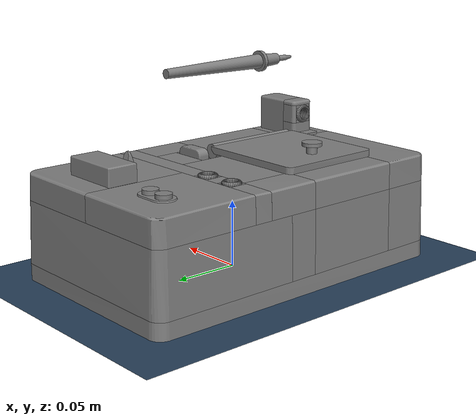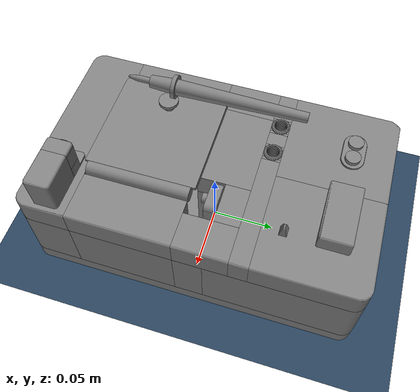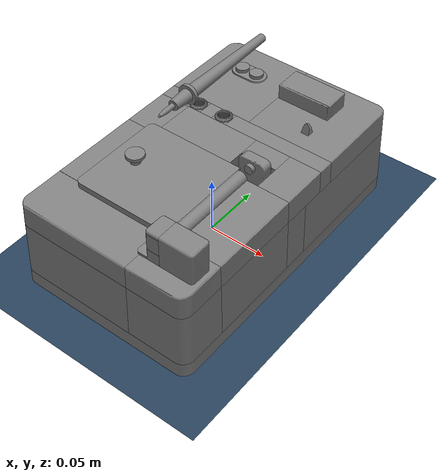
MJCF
<mujoco>
    <option timestep="0.005" integrator="RK4" gravity="0 0 -9.81">
        <flag sensornoise="disable" energy="enable" contact="enable" />
    </option>

    <asset>
        <texture name="grid" type="2d" builtin="checker" width="512" height="512" rgb1=".1 .2 .3"
            rgb2=".2 .3 .4" />
        <material name="grid" texture="grid" texrepeat="1 1" texuniform="true" reflectance=".2" />
    </asset>

    <worldbody>
        <geom name="floor" size="0 0 .05" type="plane" material="grid" />
        <light diffuse=".5 .5 .5" pos="0 0 5" dir="0 0 -1" />
    </worldbody>

    <compiler angle="radian" meshdir="task_board/stl/" autolimits="true" balanceinertia="true"
        discardvisual="true" boundmass="0.001" boundinertia="0.001" />

    <asset>
        <mesh name="task_board_tool_1" file="task_board_tool_1.stl" />
        <mesh name="task_board_tool_2" file="task_board_tool_2.stl" />
        <mesh name="task_board_tool_3" file="task_board_tool_3.stl" />
        <mesh name="task_board_tool_4" file="task_board_tool_4.stl" />
    </asset>

    <worldbody>
        <body name="task_board_tool" pos="0 0 0.15">
            <freejoint />
            <geom type="mesh" mesh="task_board_tool_1" />
            <geom type="mesh" mesh="task_board_tool_2" />
            <geom type="mesh" mesh="task_board_tool_3" />
            <geom type="mesh" mesh="task_board_tool_4" />
            <geom type="sphere" pos="0 -0.056582 0" size="0.00099" />
        </body>
    </worldbody>

    <asset>
        <mesh name="task_board_part_1" file="task_board_part_1.stl" />
        <mesh name="task_board_part_2" file="task_board_part_2.stl" />
        <mesh name="task_board_part_3" file="task_board_part_3.stl" />
        <mesh name="task_board_part_4" file="task_board_part_4.stl" />
        <mesh name="task_board_part_5" file="task_board_part_5.stl" />
        <mesh name="task_board_part_6" file="task_board_part_6.stl" />
        <mesh name="task_board_part_7" file="task_board_part_7.stl" />
        <mesh name="task_board_part_8" file="task_board_part_8.stl" />
        <mesh name="task_board_part_9" file="task_board_part_9.stl" />
        <mesh name="task_board_part_10" file="task_board_part_10.stl" />
        <mesh name="task_board_part_11" file="task_board_part_11.stl" />
        <mesh name="task_board_part_12" file="task_board_part_12.stl" />
        <mesh name="task_board_part_13" file="task_board_part_13.stl" />
        <mesh name="task_board_part_14" file="task_board_part_14.stl" />
        <mesh name="task_board_part_15" file="task_board_part_15.stl" />
        <mesh name="task_board_part_16" file="task_board_part_16.stl" />
        <mesh name="task_board_part_17" file="task_board_part_17.stl" />
        <mesh name="task_board_part_18" file="task_board_part_18.stl" />
        <mesh name="task_board_part_19" file="task_board_part_19.stl" />
        <mesh name="task_board_part_20" file="task_board_part_20.stl" />
        <mesh name="task_board_part_21" file="task_board_part_21.stl" />
        <mesh name="task_board_part_22" file="task_board_part_22.stl" />
        <mesh name="task_board_part_23" file="task_board_part_23.stl" />
        <mesh name="task_board_part_24" file="task_board_part_24.stl" />
        <mesh name="task_board_part_25" file="task_board_part_25.stl" />
        <mesh name="task_board_part_26" file="task_board_part_26.stl" />
        <mesh name="task_board_part_27" file="task_board_part_27.stl" />
        <mesh name="task_board_part_28" file="task_board_part_28.stl" />
        <mesh name="task_board_part_29" file="task_board_part_29.stl" />
        <mesh name="task_board_part_30" file="task_board_part_30.stl" />
        <mesh name="task_board_part_31" file="task_board_part_31.stl" />
        <mesh name="task_board_part_32" file="task_board_part_32.stl" />
        <mesh name="task_board_part_33" file="task_board_part_33.stl" />
        <mesh name="task_board_part_34" file="task_board_part_34.stl" />
        <mesh name="task_board_part_35" file="task_board_part_35.stl" />
        <mesh name="task_board_part_36" file="task_board_part_36.stl" />
        <mesh name="task_board_part_37" file="task_board_part_37.stl" />
        <mesh name="task_board_part_38" file="task_board_part_38.stl" />
        <mesh name="task_board_part_39" file="task_board_part_39.stl" />
        <mesh name="task_board_part_40" file="task_board_part_40.stl" />
        <mesh name="task_board_part_41" file="task_board_part_41.stl" />
        <mesh name="task_board_part_42" file="task_board_part_42.stl" />
        <mesh name="task_board_clock" file="task_board_clock.stl" />
        <mesh name="task_board_hole_side" file="task_board_hole_side.stl" />
        <mesh name="task_board_lid" file="task_board_lid.stl" />
        <mesh name="task_board_lid_hinge" file="task_board_lid_hinge.stl" />
        <mesh name="task_board_slider" file="task_board_slider.stl" />
        <mesh name="task_board_button" file="task_board_button.stl" />
    </asset>
    <worldbody>
        <body name="task_board_main">
            <geom type="mesh" mesh="task_board_part_1" />
            <geom type="mesh" mesh="task_board_part_2" />
            <geom type="mesh" mesh="task_board_part_3" />
            <geom type="mesh" mesh="task_board_part_4" />
            <geom type="mesh" mesh="task_board_part_5" />
            <geom type="mesh" mesh="task_board_part_6" />
            <geom type="mesh" mesh="task_board_part_7" />
            <geom type="mesh" mesh="task_board_part_8" />
            <geom type="mesh" mesh="task_board_part_9" />
            <geom type="mesh" mesh="task_board_part_10" />
            <geom type="mesh" mesh="task_board_part_11" />
            <geom type="mesh" mesh="task_board_part_12" />
            <geom type="mesh" mesh="task_board_part_13" />
            <geom type="mesh" mesh="task_board_part_14" />
            <geom type="mesh" mesh="task_board_part_15" />
            <geom type="mesh" mesh="task_board_part_16" />
            <geom type="mesh" mesh="task_board_part_17" />
            <geom type="mesh" mesh="task_board_part_18" />
            <geom type="mesh" mesh="task_board_part_19" />
            <geom type="mesh" mesh="task_board_part_20" />
            <geom type="mesh" mesh="task_board_part_21" />
            <geom type="mesh" mesh="task_board_part_22" />
            <geom type="mesh" mesh="task_board_part_23" />
            <geom type="mesh" mesh="task_board_part_24" />
            <geom type="mesh" mesh="task_board_part_25" />
            <geom type="mesh" mesh="task_board_part_26" />
            <geom type="mesh" mesh="task_board_part_27" />
            <geom type="mesh" mesh="task_board_part_28" />
            <geom type="mesh" mesh="task_board_part_29" />
            <geom type="mesh" mesh="task_board_part_30" />
            <geom type="mesh" mesh="task_board_part_31" />
            <geom type="mesh" mesh="task_board_part_32" />
            <geom type="mesh" mesh="task_board_part_33" />
            <geom type="mesh" mesh="task_board_part_34" />
            <geom type="mesh" mesh="task_board_part_35" />
            <geom type="mesh" mesh="task_board_part_36" />
            <geom type="mesh" mesh="task_board_part_37" />
            <geom type="mesh" mesh="task_board_part_38" />
            <geom type="mesh" mesh="task_board_part_39" />
            <geom type="mesh" mesh="task_board_part_40" />
            <geom type="mesh" mesh="task_board_part_41" />
            <geom type="mesh" mesh="task_board_part_42" />
            <geom pos="0.02361 0.09598 0.086058" type="mesh" mesh="task_board_clock" />
            <geom pos="-0.0191 0.039 0.0734" type="mesh" mesh="task_board_hole_side" />
            <geom pos="-0.0191 0.039 0.0734" quat="0.995185 0 0 0.0980171" type="mesh"
                mesh="task_board_hole_side" />
            <geom pos="-0.0191 0.039 0.0734" quat="0.980785 0 0 0.19509" type="mesh"
                mesh="task_board_hole_side" />
            <geom pos="-0.0191 0.039 0.0734" quat="0.95694 0 0 0.290285" type="mesh"
                mesh="task_board_hole_side" />
            <geom pos="-0.0191 0.039 0.0734" quat="0.92388 0 0 0.382683" type="mesh"
                mesh="task_board_hole_side" />
            <geom pos="-0.0191 0.039 0.0734" quat="0.881921 0 0 0.471397" type="mesh"
                mesh="task_board_hole_side" />
            <geom pos="-0.0191 0.039 0.0734" quat="0.83147 0 0 0.55557" type="mesh"
                mesh="task_board_hole_side" />
            <geom pos="-0.0191 0.039 0.0734" quat="0.77301 0 0 0.634393" type="mesh"
                mesh="task_board_hole_side" />
            <geom pos="-0.0191 0.039 0.0734" quat="0.707107 0 0 0.707107" type="mesh"
                mesh="task_board_hole_side" />
            <geom pos="-0.0191 0.039 0.0734" quat="0.634393 0 0 0.77301" type="mesh"
                mesh="task_board_hole_side" />
            <geom pos="-0.0191 0.039 0.0734" quat="0.55557 0 0 0.83147" type="mesh"
                mesh="task_board_hole_side" />
            <geom pos="-0.0191 0.039 0.0734" quat="0.471397 0 0 0.881921" type="mesh"
                mesh="task_board_hole_side" />
            <geom pos="-0.0191 0.039 0.0734" quat="0.382683 0 0 0.92388" type="mesh"
                mesh="task_board_hole_side" />
            <geom pos="-0.0191 0.039 0.0734" quat="0.290285 0 0 0.95694" type="mesh"
                mesh="task_board_hole_side" />
            <geom pos="-0.0191 0.039 0.0734" quat="0.19509 0 0 0.980785" type="mesh"
                mesh="task_board_hole_side" />
            <geom pos="-0.0191 0.039 0.0734" quat="0.0980171 0 0 0.995185" type="mesh"
                mesh="task_board_hole_side" />
            <geom pos="-0.0191 0.039 0.0734" quat="0 0 0 1" type="mesh" mesh="task_board_hole_side" />
            <geom pos="-0.0191 0.039 0.0734" quat="-0.0980171 0 0 0.995185" type="mesh"
                mesh="task_board_hole_side" />
            <geom pos="-0.0191 0.039 0.0734" quat="-0.19509 0 0 0.980785" type="mesh"
                mesh="task_board_hole_side" />
            <geom pos="-0.0191 0.039 0.0734" quat="-0.290285 0 0 0.95694" type="mesh"
                mesh="task_board_hole_side" />
            <geom pos="-0.0191 0.039 0.0734" quat="-0.382683 0 0 0.92388" type="mesh"
                mesh="task_board_hole_side" />
            <geom pos="-0.0191 0.039 0.0734" quat="-0.471397 0 0 0.881921" type="mesh"
                mesh="task_board_hole_side" />
            <geom pos="-0.0191 0.039 0.0734" quat="-0.55557 0 0 0.83147" type="mesh"
                mesh="task_board_hole_side" />
            <geom pos="-0.0191 0.039 0.0734" quat="-0.634393 0 0 0.77301" type="mesh"
                mesh="task_board_hole_side" />
            <geom pos="-0.0191 0.039 0.0734" quat="-0.707107 0 0 0.707107" type="mesh"
                mesh="task_board_hole_side" />
            <geom pos="-0.0191 0.039 0.0734" quat="-0.77301 0 0 0.634393" type="mesh"
                mesh="task_board_hole_side" />
            <geom pos="-0.0191 0.039 0.0734" quat="-0.83147 0 0 0.55557" type="mesh"
                mesh="task_board_hole_side" />
            <geom pos="-0.0191 0.039 0.0734" quat="-0.881921 0 0 0.471397" type="mesh"
                mesh="task_board_hole_side" />
            <geom pos="-0.0191 0.039 0.0734" quat="-0.92388 0 0 0.382683" type="mesh"
                mesh="task_board_hole_side" />
            <geom pos="-0.0191 0.039 0.0734" quat="-0.95694 0 0 0.290285" type="mesh"
                mesh="task_board_hole_side" />
            <geom pos="-0.0191 0.039 0.0734" quat="-0.980785 0 0 0.19509" type="mesh"
                mesh="task_board_hole_side" />
            <geom pos="-0.0191 0.039 0.0734" quat="-0.995185 0 0 0.0980171" type="mesh"
                mesh="task_board_hole_side" />
            <geom pos="-0.044 0.039 0.0734" type="mesh" mesh="task_board_hole_side" />
            <geom pos="-0.044 0.039 0.0734" quat="0.995185 0 0 0.0980171" type="mesh"
                mesh="task_board_hole_side" />
            <geom pos="-0.044 0.039 0.0734" quat="0.980785 0 0 0.19509" type="mesh"
                mesh="task_board_hole_side" />
            <geom pos="-0.044 0.039 0.0734" quat="0.95694 0 0 0.290285" type="mesh"
                mesh="task_board_hole_side" />
            <geom pos="-0.044 0.039 0.0734" quat="0.92388 0 0 0.382683" type="mesh"
                mesh="task_board_hole_side" />
            <geom pos="-0.044 0.039 0.0734" quat="0.881921 0 0 0.471397" type="mesh"
                mesh="task_board_hole_side" />
            <geom pos="-0.044 0.039 0.0734" quat="0.83147 0 0 0.55557" type="mesh"
                mesh="task_board_hole_side" />
            <geom pos="-0.044 0.039 0.0734" quat="0.77301 0 0 0.634393" type="mesh"
                mesh="task_board_hole_side" />
            <geom pos="-0.044 0.039 0.0734" quat="0.707107 0 0 0.707107" type="mesh"
                mesh="task_board_hole_side" />
            <geom pos="-0.044 0.039 0.0734" quat="0.634393 0 0 0.77301" type="mesh"
                mesh="task_board_hole_side" />
            <geom pos="-0.044 0.039 0.0734" quat="0.55557 0 0 0.83147" type="mesh"
                mesh="task_board_hole_side" />
            <geom pos="-0.044 0.039 0.0734" quat="0.471397 0 0 0.881921" type="mesh"
                mesh="task_board_hole_side" />
            <geom pos="-0.044 0.039 0.0734" quat="0.382683 0 0 0.92388" type="mesh"
                mesh="task_board_hole_side" />
            <geom pos="-0.044 0.039 0.0734" quat="0.290285 0 0 0.95694" type="mesh"
                mesh="task_board_hole_side" />
            <geom pos="-0.044 0.039 0.0734" quat="0.19509 0 0 0.980785" type="mesh"
                mesh="task_board_hole_side" />
            <geom pos="-0.044 0.039 0.0734" quat="0.0980171 0 0 0.995185" type="mesh"
                mesh="task_board_hole_side" />
            <geom pos="-0.044 0.039 0.0734" quat="0 0 0 1" type="mesh" mesh="task_board_hole_side" />
            <geom pos="-0.044 0.039 0.0734" quat="-0.0980171 0 0 0.995185" type="mesh"
                mesh="task_board_hole_side" />
            <geom pos="-0.044 0.039 0.0734" quat="-0.19509 0 0 0.980785" type="mesh"
                mesh="task_board_hole_side" />
            <geom pos="-0.044 0.039 0.0734" quat="-0.290285 0 0 0.95694" type="mesh"
                mesh="task_board_hole_side" />
            <geom pos="-0.044 0.039 0.0734" quat="-0.382683 0 0 0.92388" type="mesh"
                mesh="task_board_hole_side" />
            <geom pos="-0.044 0.039 0.0734" quat="-0.471397 0 0 0.881921" type="mesh"
                mesh="task_board_hole_side" />
            <geom pos="-0.044 0.039 0.0734" quat="-0.55557 0 0 0.83147" type="mesh"
                mesh="task_board_hole_side" />
            <geom pos="-0.044 0.039 0.0734" quat="-0.634393 0 0 0.77301" type="mesh"
                mesh="task_board_hole_side" />
            <geom pos="-0.044 0.039 0.0734" quat="-0.707107 0 0 0.707107" type="mesh"
                mesh="task_board_hole_side" />
            <geom pos="-0.044 0.039 0.0734" quat="-0.77301 0 0 0.634393" type="mesh"
                mesh="task_board_hole_side" />
            <geom pos="-0.044 0.039 0.0734" quat="-0.83147 0 0 0.55557" type="mesh"
                mesh="task_board_hole_side" />
            <geom pos="-0.044 0.039 0.0734" quat="-0.881921 0 0 0.471397" type="mesh"
                mesh="task_board_hole_side" />
            <geom pos="-0.044 0.039 0.0734" quat="-0.92388 0 0 0.382683" type="mesh"
                mesh="task_board_hole_side" />
            <geom pos="-0.044 0.039 0.0734" quat="-0.95694 0 0 0.290285" type="mesh"
                mesh="task_board_hole_side" />
            <geom pos="-0.044 0.039 0.0734" quat="-0.980785 0 0 0.19509" type="mesh"
                mesh="task_board_hole_side" />
            <geom pos="-0.044 0.039 0.0734" quat="-0.995185 0 0 0.0980171" type="mesh"
                mesh="task_board_hole_side" />
            <geom pos="0.037334 -0.102 0.0963" quat="0.707107 0 -0.707107 0" type="mesh"
                mesh="task_board_hole_side" />
            <geom pos="0.037334 -0.102 0.0963" quat="0.703702 -0.0693086 -0.703702 0.0693086"
                type="mesh" mesh="task_board_hole_side" />
            <geom pos="0.037334 -0.102 0.0963" quat="0.69352 -0.13795 -0.69352 0.13795" type="mesh"
                mesh="task_board_hole_side" />
            <geom pos="0.037334 -0.102 0.0963" quat="0.676659 -0.205262 -0.676659 0.205262"
                type="mesh" mesh="task_board_hole_side" />
            <geom pos="0.037334 -0.102 0.0963" quat="0.653281 -0.270598 -0.653281 0.270598"
                type="mesh" mesh="task_board_hole_side" />
            <geom pos="0.037334 -0.102 0.0963" quat="0.623613 -0.333328 -0.623613 0.333328"
                type="mesh" mesh="task_board_hole_side" />
            <geom pos="0.037334 -0.102 0.0963" quat="0.587938 -0.392847 -0.587938 0.392847"
                type="mesh" mesh="task_board_hole_side" />
            <geom pos="0.037334 -0.102 0.0963" quat="0.546601 -0.448584 -0.546601 0.448584"
                type="mesh" mesh="task_board_hole_side" />
            <geom pos="0.037334 -0.102 0.0963" quat="0.5 -0.5 -0.5 0.5" type="mesh"
                mesh="task_board_hole_side" />
            <geom pos="0.037334 -0.102 0.0963" quat="0.448584 -0.546601 -0.448584 0.546601"
                type="mesh" mesh="task_board_hole_side" />
            <geom pos="0.037334 -0.102 0.0963" quat="0.392847 -0.587938 -0.392847 0.587938"
                type="mesh" mesh="task_board_hole_side" />
            <geom pos="0.037334 -0.102 0.0963" quat="0.333328 -0.623613 -0.333328 0.623613"
                type="mesh" mesh="task_board_hole_side" />
            <geom pos="0.037334 -0.102 0.0963" quat="0.270598 -0.653281 -0.270598 0.653281"
                type="mesh" mesh="task_board_hole_side" />
            <geom pos="0.037334 -0.102 0.0963" quat="0.205262 -0.676659 -0.205262 0.676659"
                type="mesh" mesh="task_board_hole_side" />
            <geom pos="0.037334 -0.102 0.0963" quat="0.13795 -0.69352 -0.13795 0.69352" type="mesh"
                mesh="task_board_hole_side" />
            <geom pos="0.037334 -0.102 0.0963" quat="0.0693086 -0.703702 -0.0693086 0.703702"
                type="mesh" mesh="task_board_hole_side" />
            <geom pos="0.037334 -0.102 0.0963" quat="0 -0.707107 0 0.707107" type="mesh"
                mesh="task_board_hole_side" />
            <geom pos="0.037334 -0.102 0.0963" quat="-0.0693086 -0.703702 0.0693086 0.703702"
                type="mesh" mesh="task_board_hole_side" />
            <geom pos="0.037334 -0.102 0.0963" quat="-0.13795 -0.69352 0.13795 0.69352" type="mesh"
                mesh="task_board_hole_side" />
            <geom pos="0.037334 -0.102 0.0963" quat="-0.205262 -0.676659 0.205262 0.676659"
                type="mesh" mesh="task_board_hole_side" />
            <geom pos="0.037334 -0.102 0.0963" quat="-0.270598 -0.653281 0.270598 0.653281"
                type="mesh" mesh="task_board_hole_side" />
            <geom pos="0.037334 -0.102 0.0963" quat="-0.333328 -0.623613 0.333328 0.623613"
                type="mesh" mesh="task_board_hole_side" />
            <geom pos="0.037334 -0.102 0.0963" quat="-0.392847 -0.587938 0.392847 0.587938"
                type="mesh" mesh="task_board_hole_side" />
            <geom pos="0.037334 -0.102 0.0963" quat="-0.448584 -0.546601 0.448584 0.546601"
                type="mesh" mesh="task_board_hole_side" />
            <geom pos="0.037334 -0.102 0.0963" quat="-0.5 -0.5 0.5 0.5" type="mesh"
                mesh="task_board_hole_side" />
            <geom pos="0.037334 -0.102 0.0963" quat="-0.546601 -0.448584 0.546601 0.448584"
                type="mesh" mesh="task_board_hole_side" />
            <geom pos="0.037334 -0.102 0.0963" quat="-0.587938 -0.392847 0.587938 0.392847"
                type="mesh" mesh="task_board_hole_side" />
            <geom pos="0.037334 -0.102 0.0963" quat="-0.623613 -0.333328 0.623613 0.333328"
                type="mesh" mesh="task_board_hole_side" />
            <geom pos="0.037334 -0.102 0.0963" quat="-0.653281 -0.270598 0.653281 0.270598"
                type="mesh" mesh="task_board_hole_side" />
            <geom pos="0.037334 -0.102 0.0963" quat="-0.676659 -0.205262 0.676659 0.205262"
                type="mesh" mesh="task_board_hole_side" />
            <geom pos="0.037334 -0.102 0.0963" quat="-0.69352 -0.13795 0.69352 0.13795" type="mesh"
                mesh="task_board_hole_side" />
            <geom pos="0.037334 -0.102 0.0963" quat="-0.703702 -0.0693086 0.703702 0.0693086"
                type="mesh" mesh="task_board_hole_side" />
            <body name="task_board_lid" pos="0.033026 -0.0472 0.079405" gravcomp="0">
                <joint name="task_board_lid_joint" pos="0 0 0" axis="0 1 0" range="0 2.07293" />
                <geom type="mesh" mesh="task_board_lid" />
                <geom type="mesh" mesh="task_board_lid_hinge" />
                <geom size="0.004 0.003" pos="-0.066776 0 0.008037" type="cylinder" />
                <geom size="0.007486 0.00135" pos="-0.066776 0 0.012137" type="cylinder" />
            </body>
            <body name="task_board_slider" pos="0.04301 0.061594 0.082959" gravcomp="0">
                <joint name="task_board_slider_joint" pos="0 0 0" axis="1 0 0" type="slide"
                    range="-0.025 0.01" damping="0.1" solimplimit=".99 .99 0" />
                <geom type="mesh" mesh="task_board_slider" />
            </body>
            <body name="task_board_button_1" pos="-0.043957 0.09625 0.0835" gravcomp="1">
                <joint name="task_board_button_1_joint" pos="0 0 0" axis="0 0 1" type="slide"
                    range="-0.003 0" springdamper="1 0.3" springref="0.0" />
                <geom type="mesh" mesh="task_board_button" />
            </body>
            <body name="task_board_button_2" pos="-0.02995 0.09625 0.0835" gravcomp="1">
                <joint name="task_board_button_2_joint" pos="0 0 0" axis="0 0 1" type="slide"
                    range="-0.003 0" springdamper="1 0.3" springref="0.0" />
                <geom type="mesh" mesh="task_board_button" />
            </body>
        </body>
    </worldbody>
    <equality />
    <contact>
        <exclude body1="task_board_main" body2="task_board_lid" />
        <exclude body1="task_board_main" body2="task_board_slider" />
        <exclude body1="task_board_main" body2="task_board_button_1" />
        <exclude body1="task_board_main" body2="task_board_button_2" />
    </contact>
</mujoco>
